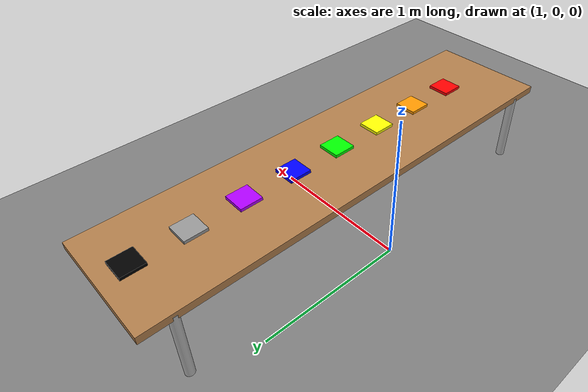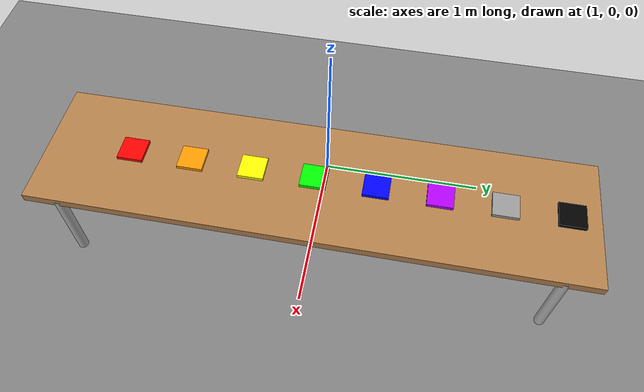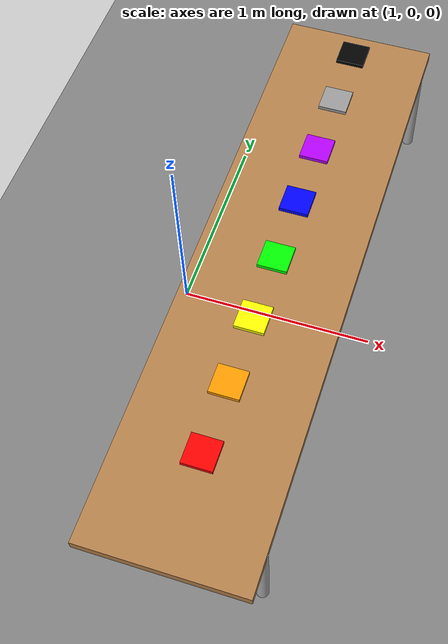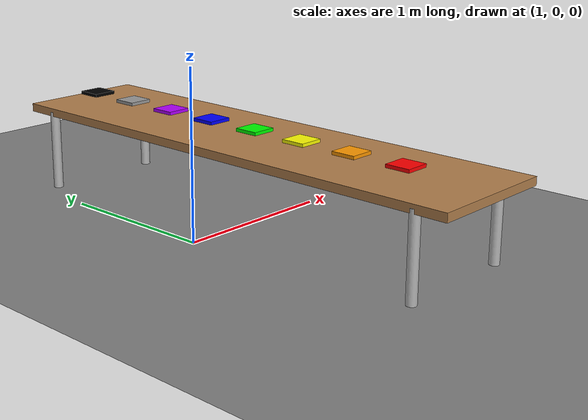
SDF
<sdf version="1.7">
 <world name="laundry_world">
  <physics name="ode_physics" type="ode">
   <gravity>0 0 -9.81</gravity>
   <ode><solver><type>quick</type><iters>50</iters><sor>1.3</sor></solver></ode>
  </physics>
  <light type="directional" name="sun">
   <pose>0 0 10 0 0 0</pose>
   <diffuse>0.9 0.9 0.9 1</diffuse>
   <specular>0.3 0.3 0.3 1</specular>
   <direction>-0.5 0.1 -0.9</direction>
  </light>
  <model name="carpet_floor">
   <static>true</static>
   <link name="link">
    <collision name="collision">
     <geometry><plane><normal>0 0 1</normal><size>100 100</size></plane></geometry>
    </collision>
    <visual name="visual">
     <geometry><plane><normal>0 0 1</normal><size>100 100</size></plane></geometry>
     <material><ambient>0.4 0.4 0.4 1</ambient><diffuse>0.5 0.5 0.5 1</diffuse></material>
    </visual>
   </link>
  </model>
  <model name="color_table">
   <static>true</static>
   <pose>1.5 0 0.5 0 0 1.5708</pose>
   <link name="link">
    <collision name="collision">
     <geometry><box><size>3.2 0.8 0.05</size></box></geometry>
     <surface><friction><ode><mu>0.6</mu><mu2>0.6</mu2></ode></friction></surface>
    </collision>
    <visual name="visual_top">
     <geometry><box><size>3.2 0.8 0.05</size></box></geometry>
     <material><ambient>0.6 0.4 0.2 1</ambient><diffuse>0.7 0.5 0.3 1</diffuse></material>
    </visual>
    <visual name="leg1">
     <pose>-1.4 -0.3733 -0.25 0 0 0</pose>
     <geometry><cylinder><radius>0.03</radius><length>0.5</length></cylinder></geometry>
    </visual>
    <visual name="leg2">
     <pose>1.4 -0.3733 -0.25 0 0 0</pose>
     <geometry><cylinder><radius>0.03</radius><length>0.5</length></cylinder></geometry>
    </visual>
    <visual name="leg3">
     <pose>-1.4 0.3733 -0.25 0 0 0</pose>
     <geometry><cylinder><radius>0.03</radius><length>0.5</length></cylinder></geometry>
    </visual>
    <visual name="leg4">
     <pose>1.4 0.3733 -0.25 0 0 0</pose>
     <geometry><cylinder><radius>0.03</radius><length>0.5</length></cylinder></geometry>
    </visual>
   </link>
  </model>
  <model name="color_red">
   <static>false</static>
   <pose>1.5 -1.071 0.56 0 0 0</pose>
   <link name="link">
    <inertial><mass>0.1</mass></inertial>
    <collision name="collision"><geometry><box><size>0.15 0.15 0.02</size></box></geometry></collision>
    <visual name="visual">
     <geometry><box><size>0.15 0.15 0.02</size></box></geometry>
     <material><diffuse>1.0 0.0 0.0 1</diffuse></material>
    </visual>
   </link>
  </model>
  <model name="color_orange">
   <static>false</static>
   <pose>1.5 -0.714 0.56 0 0 0</pose>
   <link name="link">
    <inertial><mass>0.1</mass></inertial>
    <collision name="collision"><geometry><box><size>0.15 0.15 0.02</size></box></geometry></collision>
    <visual name="visual">
     <geometry><box><size>0.15 0.15 0.02</size></box></geometry>
     <material><diffuse>1.0 0.6 0.0 1</diffuse></material>
    </visual>
   </link>
  </model>
  <model name="color_yellow">
   <static>false</static>
   <pose>1.5 -0.357 0.56 0 0 0</pose>
   <link name="link">
    <inertial><mass>0.1</mass></inertial>
    <collision name="collision"><geometry><box><size>0.15 0.15 0.02</size></box></geometry></collision>
    <visual name="visual">
     <geometry><box><size>0.15 0.15 0.02</size></box></geometry>
     <material><diffuse>1.0 1.0 0.0 1</diffuse></material>
    </visual>
   </link>
  </model>
  <model name="color_green">
   <static>false</static>
   <pose>1.5 0 0.56 0 0 0</pose>
   <link name="link">
    <inertial><mass>0.1</mass></inertial>
    <collision name="collision"><geometry><box><size>0.15 0.15 0.02</size></box></geometry></collision>
    <visual name="visual">
     <geometry><box><size>0.15 0.15 0.02</size></box></geometry>
     <material><diffuse>0.0 1.0 0.0 1</diffuse></material>
    </visual>
   </link>
  </model>
  <model name="color_blue">
   <static>false</static>
   <pose>1.5 0.357 0.56 0 0 0</pose>
   <link name="link">
    <inertial><mass>0.1</mass></inertial>
    <collision name="collision"><geometry><box><size>0.15 0.15 0.02</size></box></geometry></collision>
    <visual name="visual">
     <geometry><box><size>0.15 0.15 0.02</size></box></geometry>
     <material><diffuse>0.0 0.0 1.0 1</diffuse></material>
    </visual>
   </link>
  </model>
  <model name="color_purple">
   <static>false</static>
   <pose>1.5 0.714 0.56 0 0 0</pose>
   <link name="link">
    <inertial><mass>0.1</mass></inertial>
    <collision name="collision"><geometry><box><size>0.15 0.15 0.02</size></box></geometry></collision>
    <visual name="visual">
     <geometry><box><size>0.15 0.15 0.02</size></box></geometry>
     <material><diffuse>0.7 0.0 1.0 1</diffuse></material>
    </visual>
   </link>
  </model>
  <model name="color_grey">
   <static>false</static>
   <pose>1.5 1.071 0.56 0 0 0</pose>
   <link name="link">
    <inertial><mass>0.1</mass></inertial>
    <collision name="collision"><geometry><box><size>0.15 0.15 0.02</size></box></geometry></collision>
    <visual name="visual">
     <geometry><box><size>0.15 0.15 0.02</size></box></geometry>
     <material><diffuse>0.6 0.6 0.6 1</diffuse></material>
    </visual>
   </link>
  </model>
  <model name="color_black">
   <static>false</static>
   <pose>1.5 1.428 0.56 0 0 0</pose>
   <link name="link">
    <inertial><mass>0.1</mass></inertial>
    <collision name="collision"><geometry><box><size>0.15 0.15 0.02</size></box></geometry></collision>
    <visual name="visual">
     <geometry><box><size>0.15 0.15 0.02</size></box></geometry>
     <material><diffuse>0.0 0.0 0.0 1</diffuse></material>
    </visual>
   </link>
  </model>
  <light type="point" name="table_light">
   <pose>1.5 0 2 0 0 0</pose>
   <diffuse>0.8 0.8 0.8 1</diffuse>
   <cast_shadows>false</cast_shadows>
  </light>
 </world>
</sdf>
